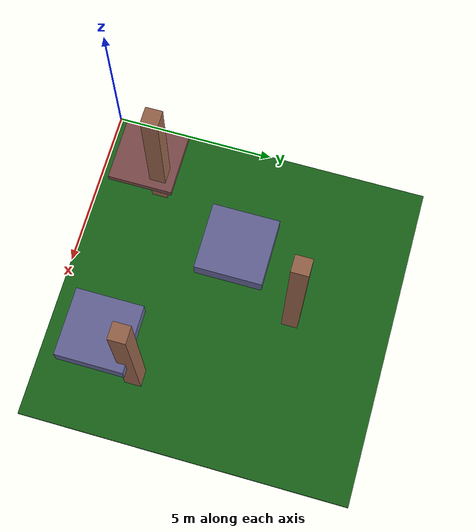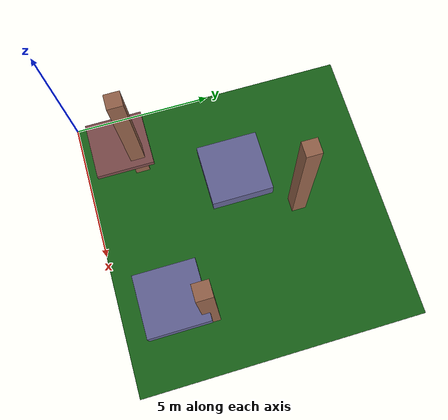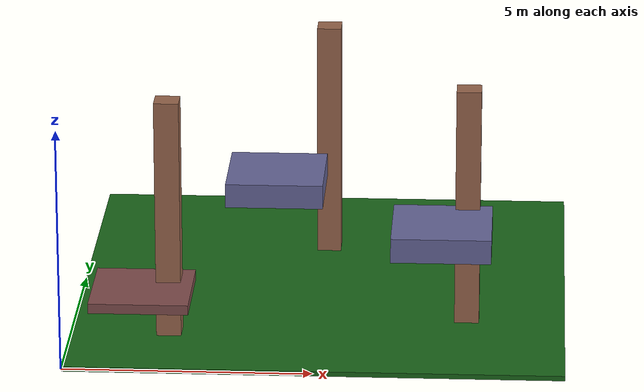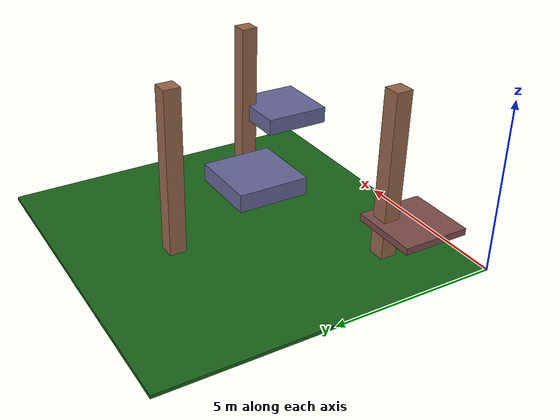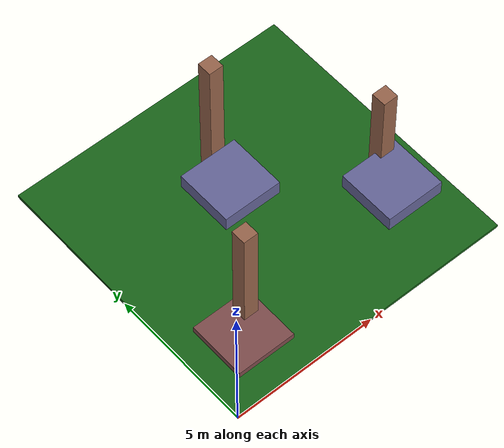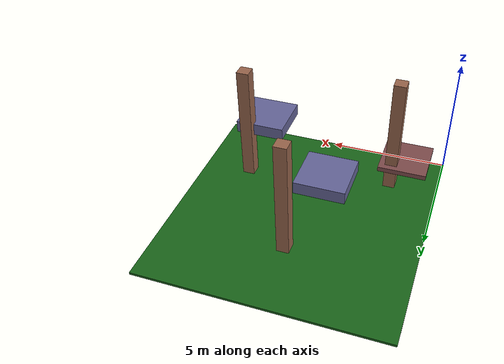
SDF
<?xml version="1.0"?>
<sdf version="1.9">
  <world name="pathfinder_drone_world">

    <physics name="1ms" type="ignored">
      <max_step_size>0.001</max_step_size>
      <real_time_factor>1.0</real_time_factor>
    </physics>

    <plugin filename="gz-sim-physics-system"
            name="gz::sim::systems::Physics"/>
    <plugin filename="gz-sim-user-commands-system"
            name="gz::sim::systems::UserCommands"/>
    <plugin filename="gz-sim-scene-broadcaster-system"
            name="gz::sim::systems::SceneBroadcaster"/>
    <plugin filename="gz-sim-sensors-system"
            name="gz::sim::systems::Sensors">
      <render_engine>ogre2</render_engine>
    </plugin>

    <light type="directional" name="sun">
      <cast_shadows>true</cast_shadows>
      <pose>0 0 10 0 0 0</pose>
      <diffuse>1 1 1 1</diffuse>
      <specular>0.5 0.5 0.5 1</specular>
      <attenuation>
        <range>1000</range>
        <constant>0.9</constant>
        <linear>0.01</linear>
        <quadratic>0.001</quadratic>
      </attenuation>
      <direction>-0.5 0.1 -0.9</direction>
    </light>

    <scene>
      <ambient>0.4 0.4 0.4 1</ambient>
      <background>0.7 0.7 0.7 1</background>
    </scene>

    <model name="ground_plane">
      <static>true</static>
      <pose>5 5 0 0 0 0</pose>
      <link name="link">
        <collision name="collision">
          <geometry>
            <box>
              <size>10 10 0.1</size>
            </box>
          </geometry>
        </collision>
        <visual name="visual">
          <geometry>
            <box>
              <size>10 10 0.1</size>
            </box>
          </geometry>
          <material>
            <ambient>0.1 0.3 0.1 1</ambient>
            <diffuse>0.1 0.4 0.1 1</diffuse>
            <specular>0.1 0.2 0.1 1</specular>
          </material>
        </visual>
      </link>
    </model>

    <model name="post_a">
      <static>true</static>
      <pose>2 2 2.5 0 0 0</pose>
      <link name="link">
        <collision name="collision">
          <geometry><box><size>0.5 0.5 5</size></box></geometry>
        </collision>
        <visual name="visual">
          <geometry><box><size>0.5 0.5 5</size></box></geometry>
          <material>
            <ambient>0.5 0.3 0.2 1</ambient>
            <diffuse>0.6 0.4 0.3 1</diffuse>
          </material>
        </visual>
      </link>
    </model>

    <model name="post_b">
      <static>true</static>
      <pose>5 7 2.5 0 0 0</pose>
      <link name="link">
        <collision name="collision">
          <geometry><box><size>0.5 0.5 5</size></box></geometry>
        </collision>
        <visual name="visual">
          <geometry><box><size>0.5 0.5 5</size></box></geometry>
          <material>
            <ambient>0.5 0.3 0.2 1</ambient>
            <diffuse>0.6 0.4 0.3 1</diffuse>
          </material>
        </visual>
      </link>
    </model>

    <model name="post_c">
      <static>true</static>
      <pose>8 3 2.5 0 0 0</pose>
      <link name="link">
        <collision name="collision">
          <geometry><box><size>0.5 0.5 5</size></box></geometry>
        </collision>
        <visual name="visual">
          <geometry><box><size>0.5 0.5 5</size></box></geometry>
          <material>
            <ambient>0.5 0.3 0.2 1</ambient>
            <diffuse>0.6 0.4 0.3 1</diffuse>
          </material>
        </visual>
      </link>
    </model>

    <model name="overhang_a">
      <static>true</static>
      <pose>4 5 2.25 0 0 0</pose>
      <link name="link">
        <collision name="collision">
          <geometry><box><size>2 2 0.5</size></box></geometry>
        </collision>
        <visual name="visual">
          <geometry><box><size>2 2 0.5</size></box></geometry>
          <material>
            <ambient>0.3 0.3 0.5 1</ambient>
            <diffuse>0.4 0.4 0.6 1</diffuse>
          </material>
        </visual>
      </link>
    </model>

    <model name="overhang_b">
      <static>true</static>
      <pose>7.5 2 2.25 0 0 0</pose>
      <link name="link">
        <collision name="collision">
          <geometry><box><size>2 2 0.5</size></box></geometry>
        </collision>
        <visual name="visual">
          <geometry><box><size>2 2 0.5</size></box></geometry>
          <material>
            <ambient>0.3 0.3 0.5 1</ambient>
            <diffuse>0.4 0.4 0.6 1</diffuse>
          </material>
        </visual>
      </link>
    </model>

    <model name="low_ceiling">
      <static>true</static>
      <pose>1.5 1.5 1.1 0 0 0</pose>
      <link name="link">
        <collision name="collision">
          <geometry><box><size>2 2 0.2</size></box></geometry>
        </collision>
        <visual name="visual">
          <geometry><box><size>2 2 0.2</size></box></geometry>
          <material>
            <ambient>0.4 0.2 0.2 1</ambient>
            <diffuse>0.5 0.3 0.3 1</diffuse>
          </material>
        </visual>
      </link>
    </model>

  </world>
</sdf>
